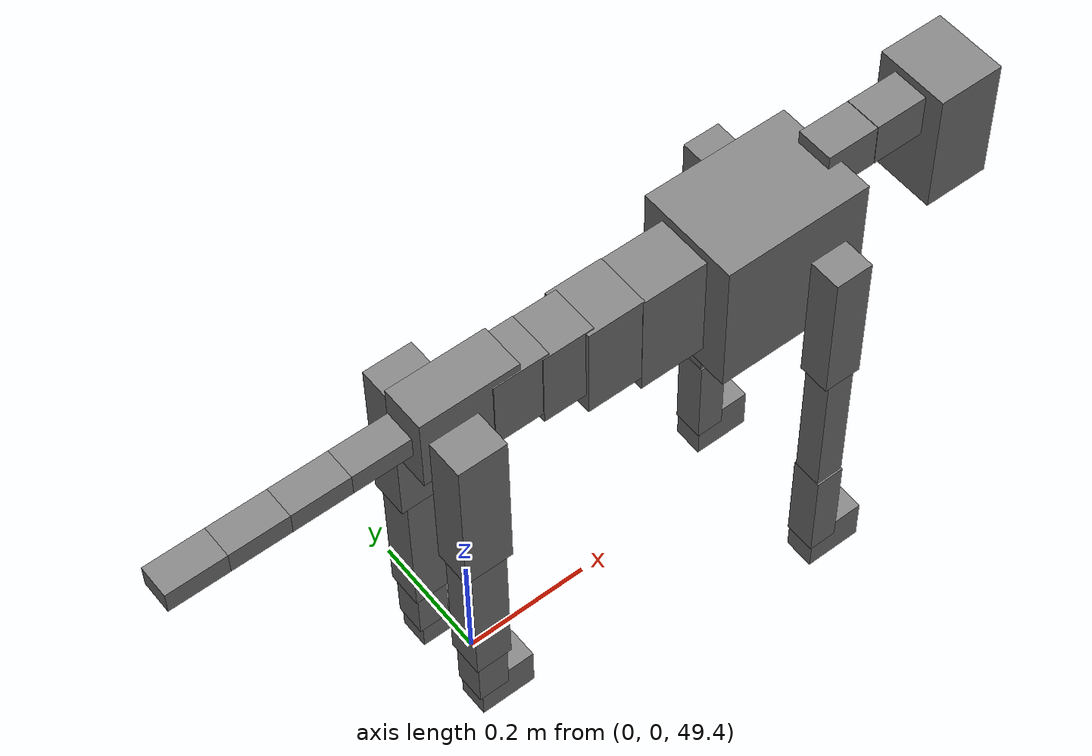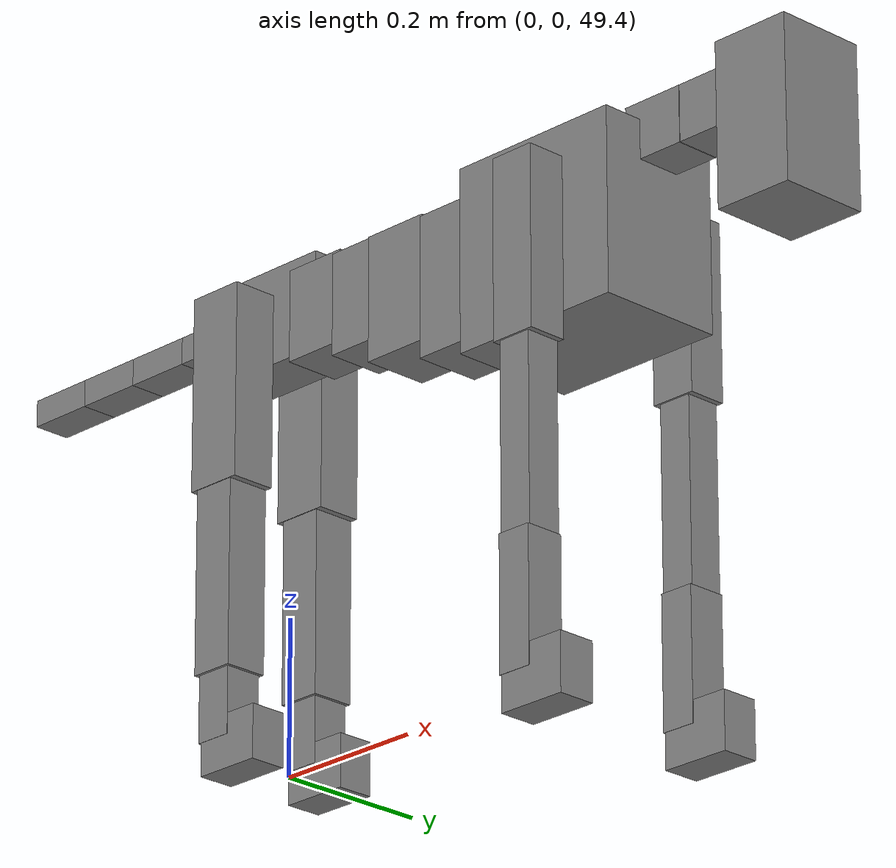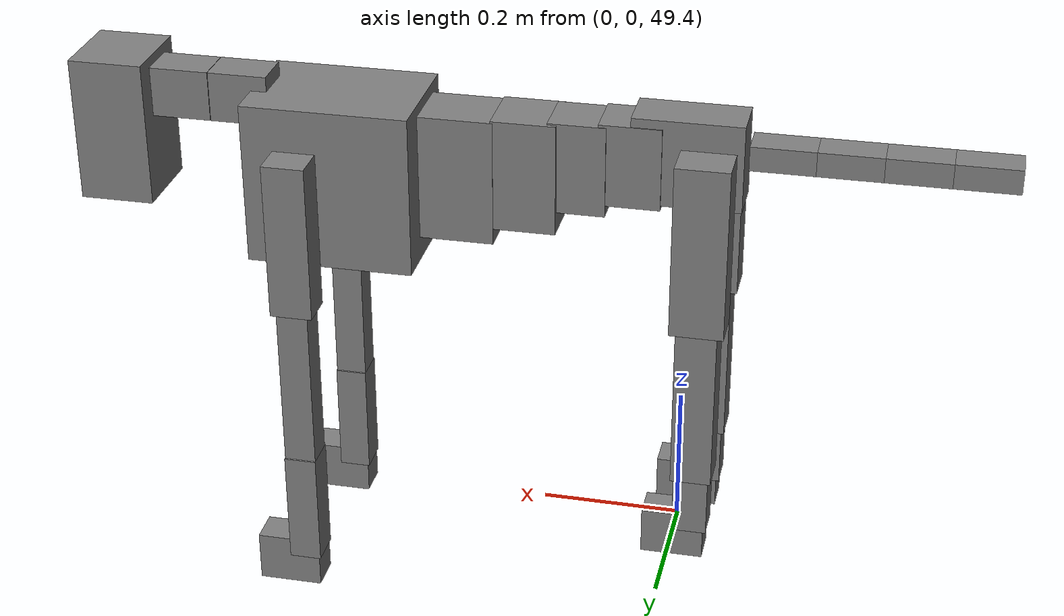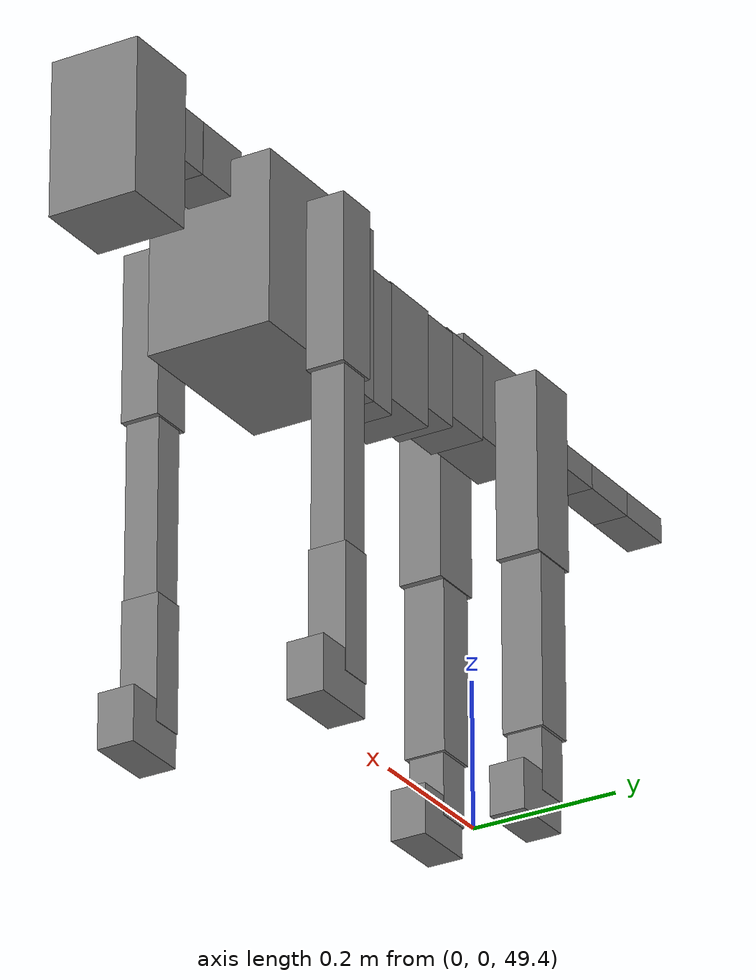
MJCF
<mujoco model="dog">

    <default>
        <joint armature="0.02" stiffness="1" damping="0.2" limited="true"/>
        <geom condim="3" friction="1 0.05 0.05" margin="0.01"/>
        <motor ctrllimited="true" ctrlrange="-1.0 1.0" forcelimited="true" gear="50"/>
    </default>

    <compiler inertiafromgeom="true" angle="radian"/>

    <option timestep="0.016" iterations="50" tolerance="1e-10" solver="Newton" jacobian="dense" cone="pyramidal"/>

    <size nconmax="20000" njmax="60000" nstack="5000000"/>
    <visual>
        <map force="0.1" zfar="30"/>
        <rgba haze="0.15 0.25 0.35 1"/>
        <quality shadowsize="2048"/>
        <global offwidth="800" offheight="800"/>
    </visual>

    <asset>
        <texture type="skybox" builtin="gradient" rgb1="0.3 0.5 0.7" rgb2="0 0 0" width="512" height="512"/>
        <texture name="texplane" type="2d" builtin="checker" rgb1=".2 .3 .4" rgb2=".1 0.15 0.2" width="512" height="512"
                 mark="cross" markrgb=".8 .8 .8"/>
        <texture name="texgeom" type="cube" builtin="flat" mark="cross" width="127" height="1278" rgb1="0.8 0.6 0.4"
                 rgb2="0.8 0.6 0.4" markrgb="1 1 1" random="0.01"/>

        <material name="matplane" reflectance="0.3" texture="texplane" texrepeat="1 1" texuniform="true"/>
        <material name="matgeom" texture="texgeom" texuniform="true" rgba="0.8 0.6 .4 1"/>
    </asset>

    <worldbody>
        <geom name="floor" pos="0 0 0" size="0 0 .25" type="plane" material="matplane" condim="3"/>

        <light directional="false" diffuse=".2 .2 .2" specular="0 0 0" pos="0 0 5" dir="0 0 -1" castshadow="false"/>
        <light mode="targetbodycom" target="torso" directional="false" diffuse=".8 .8 .8" specular="0.3 0.3 0.3"
               pos="0 0 4.0" dir="0 0 -1"/>

        <body name="root" pos="0 0 50">
            <freejoint name="root_1"/>
            <geom type="box" pos="0 0 -0.02" size="0.0774  0.0358  0.063" density="2030"/>

            <body name="spine1" pos="0.054 0 0">
                <joint name="spine1_y" axis="0 1 0" range="0 0.7" limited="true"/>
                <geom type="box" pos="0.02375 0 -0.03" size="0.04375  0.0375  0.05985" density="2030"/>

                <body name="spine2" pos="0.0612 0 0">
                    <joint name="spine2_y" axis="0 1 0" range="-0.15 0.15" limited="true"/>
                    <geom type="box" pos="0.03555  0  -0.04" size="0.04055  0.039  0.06615" density="2030"/>

                    <body name="spine3" pos="0.0730 0 0">
                        <joint name="spine3_y" axis="0 1 0" range="-0.15 0.15" limited="true"/>
                        <geom type="box" pos="0.03555  0  -0.057" size="0.04555  0.0445  0.081" density="2030"/>

                        <body name="spine4" pos="0.0780 0 0">
                            <joint name="spine4_y" axis="0 1 0" range="-0.15 0.15" limited="true"/>
                            <geom type="box" pos="0.05265  0  -0.07" size="0.05265  0.045  0.09135" density="2030"/>

                            <body name="torso" pos="0.1082 0 0">
                                <joint name="torso_y" axis="0 1 0" range="-0.15 0.15" limited="true"/>
                                <geom type="box" pos="0.11925  0  -0.085" size="0.11925  0.085  0.11745"
                                      density="2030"/>

                                <body name="neck1" pos="0.2160  0   0.0180">
                                    <joint name="neck1_y" axis="0 1 0" range="-1.2  -1" limited="true"/>
                                    <geom type="box" pos="0.0423  0  0" size="0.0423  0.03  0.036" density="2325"/>

                                    <body name="neck2" pos="0.0853  0  0">
                                        <joint name="neck2_y" axis="0 1 0" range="0.1  0" limited="true"/>
                                        <geom type="box" pos="0.0423  0  0" size="0.0423  0.03  0.036" density="2325"/>

                                        <body name="head" pos="0.0853  0  0">
                                            <joint name="head_y" axis="0 1 0" range="-0.3  -0.2" limited="true"/>
                                            <geom type="box" pos="0.0531  0  -0.055" size="0.0531  0.06  0.1044"
                                                  density="4030"/>

                                        </body>
                                    </body>
                                </body>

                                <body name="front_shoulder" pos="0.156  0   -0.0480">
                                    <joint name="front_shoulder_y" axis="0 1 0" range="-1 1.5" limited="true"/>
                                    <geom type="box" pos="0 0.13 -0.0877" size="0.0302  0.0258  0.1144" density="1158"/>
                                    <geom type="box" pos="0 -0.13 -0.0877" size="0.0302  0.0258  0.1144"
                                          density="1158"/>

                                    <body name="front_elbow" pos="0  0  -0.1754">
                                        <joint name="front_elbow_y" axis="0 1 0" range="-2 0" limited="true"/>
                                        <geom type="box" pos="0 0.13 -0.1376" size="0.0225  0.0230  0.1376"
                                              density="1081"/>
                                        <geom type="box" pos="0 -0.13 -0.1376" size="0.0225  0.0230  0.1376"
                                              density="1081"/>

                                        <body name="front_wrist" pos="0  0  -0.2753">
                                            <joint name="front_wrist_y" axis="0 1 0" range="-0.2 0" limited="true"/>
                                            <geom type="box" pos="0 0.13 -0.0712" size="0.0230  0.0256  0.0844"
                                                  density="1664"/>
                                            <geom type="box" pos="0 -0.13 -0.0712" size="0.0230  0.0256  0.0844"
                                                  density="1664"/>

                                            <body name="front_finger_end" pos="0  0  -0.1425">
                                                <joint name="front_finger_y" axis="0 1 0" range="-0.4 1"
                                                       limited="true"/>
                                                <geom type="box" pos="0.0250  0.13  -0.0217"
                                                      size="0.0459  0.0250  0.0367" density="1515"/>
                                                <geom type="box" pos="0.0250  -0.13  -0.0217"
                                                      size="0.0459  0.0250  0.0367" density="1515"/>

                                            </body>

                                        </body>
                                    </body>
                                </body>

                            </body>
                        </body>
                    </body>
                </body>
            </body>

            <body name="back_hip" pos="-0.03 0 -0.018">
                <joint name="back_hip_y" axis="0 1 0" range="-1.5 0.3" limited="true"/>
                <geom type="box" pos="0 0.07 -0.1030" size="0.0380  0.0298  0.1258" density="1154"/>
                <geom type="box" pos="0 -0.07 -0.1030" size="0.0380  0.0298  0.1258" density="1154"/>

                <body name="back_knee" pos="0  0  -0.2059">
                    <joint name="back_knee_y" axis="0 1 0" range="0 2.8" limited="true"/>
                    <geom type="box" pos="0 0.07 -0.1218" size="0.0289  0.0285  0.1373" density="1227"/>
                    <geom type="box" pos="0 -0.07 -0.1218" size="0.0289  0.0285  0.1373" density="1227"/>

                    <body name="back_ankle" pos="0  0  -0.2435">
                        <joint name="back_ankle_y" axis="0 1 0" range="-2.2 0" limited="true"/>
                        <geom type="box" pos="0 0.07 -0.0448" size="0.0246  0.0246  0.0560" density="1284"/>
                        <geom type="box" pos="0 -0.07 -0.0448" size="0.0246  0.0246  0.0560" density="1284"/>

                        <body name="back_toe_end" pos="0  0  -0.0896">
                            <joint name="back_toe_y" axis="0 1 0" range="-0.4 1" limited="true"/>
                            <geom type="box" pos="0.0242  0.07  -0.0191" size="0.0444  0.0242  0.0341" density="1515"/>
                            <geom type="box" pos="0.0242  -0.07  -0.0191" size="0.0444  0.0242  0.0341" density="1515"/>

                        </body>
                    </body>
                </body>
            </body>

            <body name="tail1" pos="-0.074 0 -0.006">
                <joint name="tail1_y" axis="0 1 0" range="-0.2 0.2" limited="true"/>
                <geom type="box" pos="-0.0536  0  0" size="0.045  0.025  0.0175" density="1587"/>

                <body name="tail2" pos="-0.09 0 0">
                    <joint name="tail2_y" axis="0 1 0" range="-0.2 0.2" limited="true"/>
                    <geom type="box" pos="-0.0536  0  0" size="0.045  0.025  0.0175" density="1587"/>

                    <body name="tail3" pos="-0.09 0 0">
                        <joint name="tail3_y" axis="0 1 0" range="-0.2 0.2" limited="true"/>
                        <geom type="box" pos="-0.0536  0  0" size="0.045  0.025  0.0175" density="1587"/>

                        <body name="tail4" pos="-0.09 0 0">
                            <joint name="tail4_y" axis="0 1 0" range="-0.2 0.2" limited="true"/>
                            <geom type="box" pos="-0.0536  0  0" size="0.045  0.025  0.0175" density="1587"/>

                        </body>
                    </body>
                </body>
            </body>
        </body>
    </worldbody>

    <actuator>
        <motor joint="spine1_y" forcerange="-150 150     "/>
        <motor joint="spine2_y" forcerange="-150 150     "/>
        <motor joint="spine3_y" forcerange="-150 150     "/>
        <motor joint="spine4_y" forcerange="-150 150     "/>
        <motor joint="torso_y" forcerange="-150 150     "/>
        <motor joint="neck1_y" forcerange="-100 100       "/>
        <motor joint="neck2_y" forcerange="-100 100       "/>
        <motor joint="head_y" forcerange="-150 150       "/>
        <motor joint="front_shoulder_y" forcerange="-115.37 156.47"/>
        <motor joint="front_elbow_y" forcerange="-153.15 114.24"/>
        <motor joint="front_wrist_y" forcerange="-93.12 111.30"/>
        <motor joint="front_finger_y" forcerange="-69.09 24.42"/>
        <motor joint="back_hip_y" forcerange="-313.38 284.09"/>
        <motor joint="back_knee_y" forcerange="-338.01 276.91"/>
        <motor joint="back_angle_y" forcerange="-90.29 202.58"/>
        <motor joint="back_toe_y" forcerange="-69.87 43.78"/>
        <motor joint="tail1_y" forcerange="-50 50     "/>
        <motor joint="tail2_y" forcerange="-50 50     "/>
        <motor joint="tail3_y" forcerange="-50 50     "/>
        <motor joint="tail4_y" forcerange="-50 50     "/>
    </actuator>
</mujoco>
